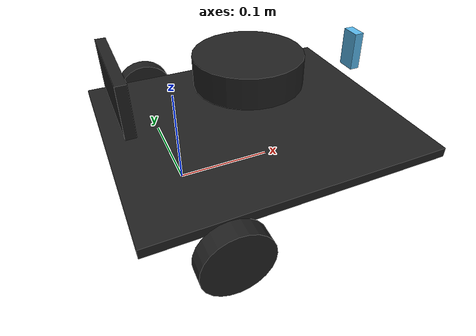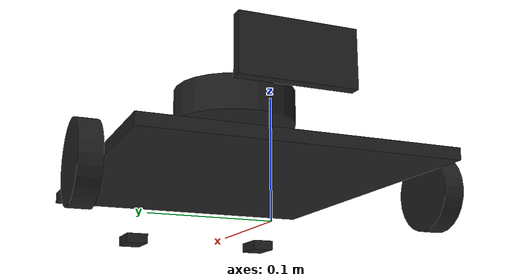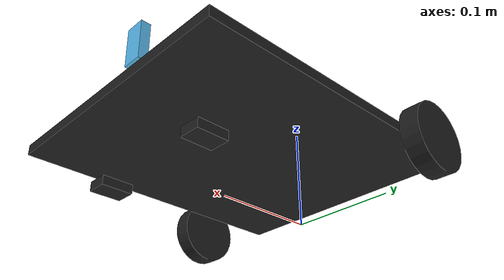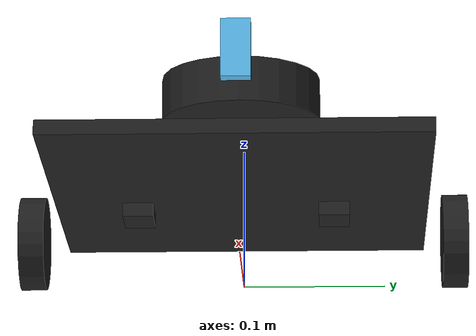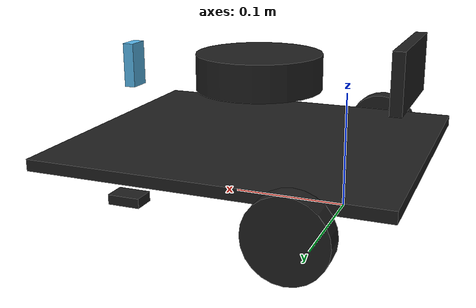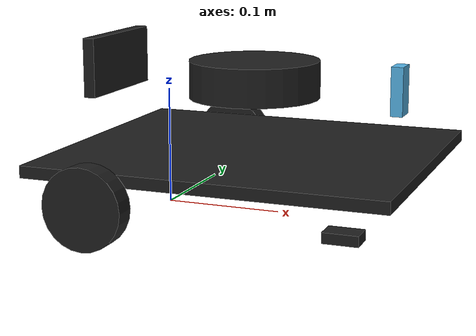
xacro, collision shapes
<?xml version="1.0" ?>
<robot name="abot_waffle" xmlns:xacro="http://ros.org/wiki/xacro">
  <xacro:include filename="$(find abot_description)/urdf/common_properties.xacro"/>
  <xacro:include filename="$(find abot_description)/urdf/abot.gazebo.xacro"/>

  <xacro:property name="r200_cam_rgb_px" value="0.005"/>
  <xacro:property name="r200_cam_rgb_py" value="0.018"/>
  <xacro:property name="r200_cam_rgb_pz" value="0.013"/>
  <xacro:property name="r200_cam_depth_offset" value="0.01"/>

  <link name="base_footprint"/>

  <joint name="base_joint" type="fixed">
    <parent link="base_footprint"/>
    <child link="base_link" />
    <origin xyz="0 0 0.010" rpy="0 0 0"/>
  </joint>

  <link name="base_link">
    <visual>
      <origin xyz="0.08 0 0.047" rpy="0 0 0"/>
      <geometry>
        <box size="0.3 0.26 0.094"/>
      </geometry>
      <material name="light_black"/>
    </visual>

    <collision>
      <origin xyz="0.08 0 0.04" rpy="0 0 0"/>
      <geometry>
        <box size="0.3 0.26 0.01"/>
      </geometry>
    </collision>

    <inertial>
      <origin xyz="0 0 0" rpy="0 0 0"/>
      <mass value="1.3729096e+00"/>
      <inertia ixx="8.7002718e-03" ixy="-4.7576583e-05" ixz="1.1160499e-04"
               iyy="8.6195418e-03" iyz="-3.5422299e-06"
               izz="1.4612727e-02" />
    </inertial>
  </link>

  <link name="flat_bed">
    <visual>
      <origin xyz="0.064 0 0.0" rpy="0 0 0"/>
      <geometry>
         <box size="0.01 0.1 0.05"/>
      </geometry>
      <material name="light_black"/>
    </visual>
    <collision>
      <origin xyz="0.05 0 0" rpy="0 0 0"/>
      <geometry>
         <box size="0.01 0.1 0.05"/>
      </geometry>
    </collision>

    <inertial>
      <origin xyz="0 0 0" rpy="0 0 0"/>
      <mass value="0.01"/>
      <inertia ixx="8.7002718e-03" ixy="-4.7576583e-05" ixz="1.1160499e-04"
               iyy="8.6195418e-03" iyz="-3.5422299e-06"
               izz="1.4612727e-02" />
    </inertial>
  </link>

  <joint name="flat_joint" type="fixed">
    <parent link="base_footprint"/>
    <child link="flat_bed" />
    <origin xyz="-0.1 0 0.122" rpy="0 0 0"/>
  </joint>

  <joint name="wheel_left_joint" type="continuous">
    <parent link="base_link"/>
    <child link="wheel_left_link"/>
    <origin xyz="0.0 0.15 0.023" rpy="-1.57 0 0"/>
    <axis xyz="0 0 1"/>
  </joint>

  <link name="wheel_left_link">
    <visual>
      <origin xyz="0 0 0" rpy="1.57 0 0"/>
      <geometry>
        <mesh filename="package://abot_description/meshes/wheels/left_tire.stl" scale="0.001 0.001 0.001"/>
      </geometry>
      <material name="dark"/>
    </visual>

    <collision>
      <origin xyz="0 0 0" rpy="0 0 0"/>
      <geometry>
        <cylinder length="0.018" radius="0.033"/>
      </geometry>
    </collision>

    <inertial>
      <origin xyz="0 0 0" />
      <mass value="2.8498940e-02" />
      <inertia ixx="1.1175580e-05" ixy="-4.2369783e-11" ixz="-5.9381719e-09"
               iyy="1.1192413e-05" iyz="-1.4400107e-11"
               izz="2.0712558e-05" />
      </inertial>
  </link>

  <joint name="wheel_right_joint" type="continuous">
    <parent link="base_link"/>
    <child link="wheel_right_link"/>
    <origin xyz="0.0 -0.15 0.023" rpy="-1.57 0 0"/>
    <axis xyz="0 0 1"/>
  </joint>

  <link name="wheel_right_link">
    <visual>
      <origin xyz="0 0 0" rpy="1.57 0 0"/>
      <geometry>
        <mesh filename="package://abot_description/meshes/wheels/right_tire.stl" scale="0.001 0.001 0.001"/>
      </geometry>
      <material name="dark"/>
    </visual>

    <collision>
      <origin xyz="0 0 0" rpy="0 0 0"/>
      <geometry>
        <cylinder length="0.018" radius="0.033"/>
      </geometry>
    </collision>

    <inertial>
      <origin xyz="0 0 0" />
      <mass value="2.8498940e-02" />
      <inertia ixx="1.1175580e-05" ixy="-4.2369783e-11" ixz="-5.9381719e-09"
               iyy="1.1192413e-05" iyz="-1.4400107e-11"
               izz="2.0712558e-05" />
      </inertial>
  </link>

  <joint name="caster_back_right_joint" type="fixed">
    <parent link="base_link"/>
    <child link="caster_back_right_link"/>
    <origin xyz="0.177 -0.064 -0.004" rpy="-1.57 0 0"/>
  </joint>

  <link name="caster_back_right_link">
    <collision>
      <origin xyz="0 0.001 0" rpy="0 0 0"/>
      <geometry>
        <box size="0.030 0.009 0.020"/>
      </geometry>
    </collision>

    <inertial>
      <origin xyz="0 0 0" />
      <mass value="0.005" />
      <inertia ixx="0.001" ixy="0.0" ixz="0.0"
               iyy="0.001" iyz="0.0"
               izz="0.001" />
    </inertial>
  </link>

  <joint name="caster_back_left_joint" type="fixed">
    <parent link="base_link"/>
    <child link="caster_back_left_link"/>
    <origin xyz="0.177 0.064 -0.004" rpy="-1.57 0 0"/>
  </joint>

  <link name="caster_back_left_link">
    <collision>
      <origin xyz="0 0.001 0" rpy="0 0 0"/>
      <geometry>
        <box size="0.030 0.009 0.020"/>
      </geometry>
    </collision>

    <inertial>
      <origin xyz="0 0 0" />
      <mass value="0.005" />
      <inertia ixx="0.001" ixy="0.0" ixz="0.0"
               iyy="0.001" iyz="0.0"
               izz="0.001" />
    </inertial>
  </link>

  <joint name="imu_joint" type="fixed">
    <parent link="base_link"/>
    <child link="imu_link"/>
    <origin xyz="0.0 0 0.068" rpy="0 0 0"/>
  </joint>

  <link name="imu_link"/>

  <joint name="scan_joint" type="fixed">
    <parent link="base_link"/>
    <child link="base_scan"/>
    <origin xyz="0.064 0 0.11" rpy="0 0 0"/>
  </joint>

  <link name="base_scan">
    <visual>
      <origin xyz="0.015 0 -0.0065" rpy="0 0 0"/>
      <geometry>
        <cylinder length="0.0315" radius="0.055"/>
      </geometry>
      <material name="dark"/>
    </visual>

    <collision>
      <origin xyz="0.015 0 -0.0065" rpy="0 0 0"/>
      <geometry>
        <cylinder length="0.0315" radius="0.055"/>
      </geometry>
    </collision>

    <inertial>
      <mass value="0.114" />
      <origin xyz="0 0 0" />
      <inertia ixx="0.001" ixy="0.0" ixz="0.0"
               iyy="0.001" iyz="0.0"
               izz="0.001" />
    </inertial>
  </link>

  <joint name="camera_joint" type="fixed">
    <origin xyz="0.2 -0.065 0.094" rpy="0 0 0"/>
    <parent link="base_link"/>
    <child link="camera_link"/>
  </joint>

  <link name="camera_link">
    <visual>
     <origin xyz="0.003 0.065 0.007" rpy="0 0 0"/>
      <geometry>
        <box size="0.01 0.02 0.04"/>
      </geometry>
    </visual>
    <collision>
      <origin xyz="0.003 0.065 0.007" rpy="0 0 0"/>
      <geometry>
        <box size="0.01 0.02 0.04"/>
      </geometry>
    </collision>

    <!-- This inertial field needs doesn't contain reliable data!! -->
  </link>

  <joint name="camera_rgb_joint" type="fixed">
    <origin xyz="${r200_cam_rgb_px} ${r200_cam_rgb_py} ${r200_cam_rgb_pz}" rpy="0 0 0"/>
    <parent link="camera_link"/>
    <child link="camera_rgb_frame"/>
  </joint>
  <link name="camera_rgb_frame"/>

  <joint name="camera_rgb_optical_joint" type="fixed">
    <origin xyz="0 0 0" rpy="-1.57 0 -1.57"/>
    <parent link="camera_rgb_frame"/>
    <child link="camera_rgb_optical_frame"/>
  </joint>
  <link name="camera_rgb_optical_frame"/>

  <joint name="camera_depth_joint" type="fixed">
    <origin xyz="${r200_cam_rgb_px} ${r200_cam_rgb_py + r200_cam_depth_offset} ${r200_cam_rgb_pz}" rpy="0 0 0"/>
    <parent link="camera_link"/>
    <child link="camera_depth_frame"/>
  </joint>
  <link name="camera_depth_frame"/>

  <joint name="camera_depth_optical_joint" type="fixed">
    <origin xyz="0 0 0" rpy="-1.57 0 -1.57"/>
    <parent link="camera_depth_frame"/>
    <child link="camera_depth_optical_frame"/>
  </joint>
  <link name="camera_depth_optical_frame"/>

</robot>
